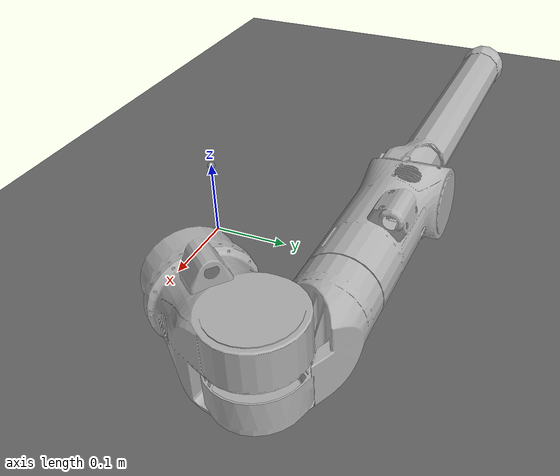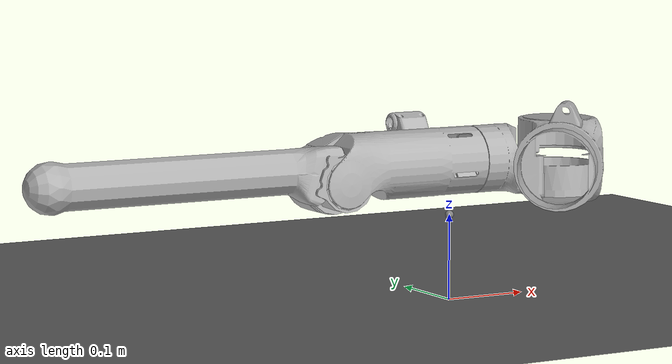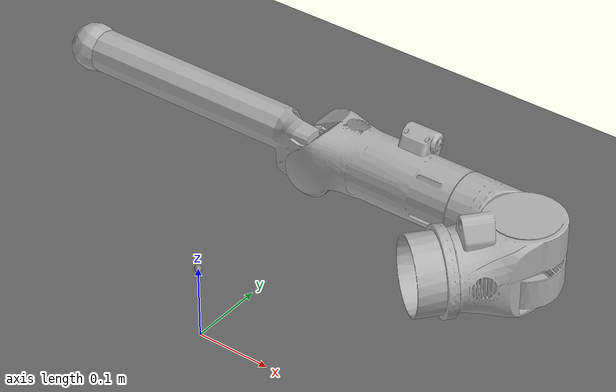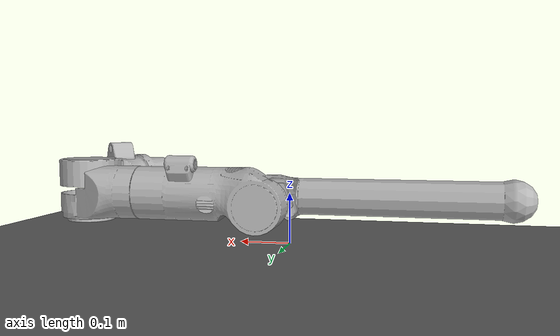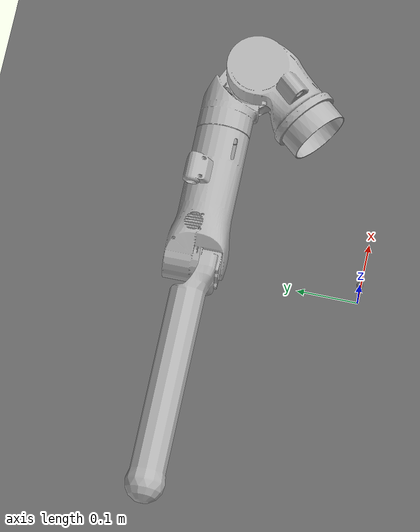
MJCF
<mujoco model="Alexander">
  <default>
    <joint limited="true" damping="0.01" armature="0.01" frictionloss="0.01" />
    <geom condim="4" contype="1" conaffinity="15" friction="0.9 0.2 0.2" solref="0.001 2" />
    <motor ctrllimited="true" />
    <equality solref="0.001 2" />
    <default class="visualgeom">
      <geom material="visualgeom" condim="1" contype="0" conaffinity="0" />
    </default>
  </default>

  <compiler angle="radian" meshdir="../meshes/" eulerseq="zyx" autolimits="true" />

  <asset>
    <texture name="texplane" type="2d" builtin="checker" rgb1=".0 .0 .0" rgb2=".8 .8 .8" width="100" height="100" />
    <material name="matplane" reflectance="0." texture="texplane" texrepeat="1 1" texuniform="true" />
    <material name="default_material" rgba="0.7 0.7 0.7 1" />
    <mesh name="LeftShoulderPitchLink.obj" file="cycloidal_arm/LeftShoulderPitchLink.obj" />
    <mesh name="LeftShoulderRollLink_shortBicep.obj" file="cycloidal_arm/LeftShoulderRollLink_shortBicep.obj" />
    <mesh name="LeftShoulderYawLink.obj" file="cycloidal_arm/LeftShoulderYawLink.obj" />
    <mesh name="LEFT_ELBOW_PITCH_LINK_413mm_LENGTH.obj" file="cycloidal_arm/LEFT_ELBOW_PITCH_LINK_413mm_LENGTH.obj" />
  </asset>

  <worldbody>
    <light directional="true" diffuse="0.4 0.4 0.4" specular="0.1 0.1 0.1" pos="0 0 5.0" dir="0 0 -1" castshadow="false" />
    <light directional="true" diffuse="0.6 0.6 0.6" specular="0.2 0.2 0.2" pos="0 0 4" dir="0 0 -1" />
    <geom name="ground" type="plane" pos="0 0 0" size="10 10 0.001" quat="1 0 0 0" material="matplane" condim="3" conaffinity="15" />
    <body name="root" pos="0 0 0.1" quat="1 0 1 0">
      <freejoint name="root" />
      <site name="root_site" pos="0 0 0" quat="1 0 0 0" />
      <body name="TORSO_LINK" pos="0 0 0" quat="1 0 0 0">
        <inertial pos="0 0 0" quat="1.0 0.0 0.0 0.0" mass="0.001" diaginertia="1e-05 1e-05 1e-05" />
        <body name="LEFT_SHOULDER_Y_LINK" pos="-0.025 0.1 0.214" quat="0.9396925696192966 0.34202028390474665 0.0 0.0">
          <joint name="LEFT_SHOULDER_Y" type="hinge" range="-3.141592 1.22173" axis="0.0 1.0 0.0" />
          <inertial pos="-0.00264 0.12135 -0.006824" quat="1.0 0.0 0.0 0.0" mass="2.99" diaginertia="0.0111046 0.0051699 0.01176" />
          <geom name="LEFT_SHOULDER_Y_LINK_visual_0" pos="0.0 0.0 0.0" quat="1.0 0.0 0.0 0.0" material="default_material" type="mesh" mesh="LeftShoulderPitchLink.obj" />
          <body name="LEFT_SHOULDER_X_LINK" pos="0.0 0.15676000 -0.01300000" quat="0.9396925696192966 -0.34202028390474665 0.0 0.0">
            <joint name="LEFT_SHOULDER_X" type="hinge" range="-0.349066 2.79253" axis="1 0 0" />
            <inertial pos="0.01251711 0.0188309 -0.03849849" quat="1.0 0.0 0.0 0.0" mass="0.972" diaginertia="0.0029485 0.0023587 0.0014366" />
            <geom name="LEFT_SHOULDER_X_LINK_visual_0" pos="0.0 0.0 0.0" quat="1.0 0.0 0.0 0.0" material="default_material" type="mesh" mesh="LeftShoulderRollLink_shortBicep.obj" />
            <body name="LEFT_SHOULDER_Z_LINK" pos="0.0 0.035 0.0" quat="1.0 0.0 0.0 0.0">
              <joint name="LEFT_SHOULDER_Z" type="hinge" range="-1.91986 1.22173" axis="0.0 0.0 1.0" />
              <inertial pos="0.00510403 0.00314332 -0.21695413" quat="1.0 0.0 0.0 0.0" mass="2.91" diaginertia="0.0267829 0.0265514 0.003052" />
              <geom name="LEFT_SHOULDER_Z_LINK_visual_0" pos="0.0 0.0 0.0867" quat="1.0 0.0 0.0 0.0" material="default_material" type="mesh" mesh="LeftShoulderYawLink.obj" />
              <body name="LEFT_ELBOW_PITCH_LINK" pos="0.015 0.0 -0.3127" quat="1.0 0.0 0.0 0.0">
                <joint name="LEFT_ELBOW_Y" type="hinge" range="-2.35619 0.174532925" axis="0.0 1.0 0.0" />
                <inertial pos="-0.01090935 -0.01147189 -0.10388715" quat="1.0 0.0 0.0 0.0" mass="0.616" diaginertia="0.00760733 0.00767556 0.0004554" />
                <geom name="LEFT_ELBOW_PITCH_LINK_visual_0" pos="0.0 0.0 0.0" quat="1.0 0.0 0.0 0.0" material="default_material" type="mesh" mesh="LEFT_ELBOW_PITCH_LINK_413mm_LENGTH.obj" />
              </body>
            </body>
          </body>
        </body>
      </body>
    </body>
  </worldbody>

  <actuator>
    <position name="LEFT_SHOULDER_Y_ctrl" joint="LEFT_SHOULDER_Y" kp="40.00000000" kv="2.00000000" forcerange="-150.00000000 150.00000000" forcelimited="true" ctrlrange="-3.141592 1.22173" ctrllimited="true" />
    <position name="LEFT_SHOULDER_X_ctrl" joint="LEFT_SHOULDER_X" kp="40.00000000" kv="2.00000000" forcerange="-150.00000000 150.00000000" forcelimited="true" ctrlrange="-0.349066 2.79253" ctrllimited="true" />
    <position name="LEFT_SHOULDER_Z_ctrl" joint="LEFT_SHOULDER_Z" kp="40.00000000" kv="2.00000000" forcerange="-80.00000000 80.00000000" forcelimited="true" ctrlrange="-1.91986 1.22173" ctrllimited="true" />
    <position name="LEFT_ELBOW_Y_ctrl" joint="LEFT_ELBOW_Y" kp="40.00000000" kv="2.00000000" forcerange="-80.00000000 80.00000000" forcelimited="true" ctrlrange="-2.35619 0.174532925" ctrllimited="true" />
  </actuator>

  <sensor>
    <framepos name="base_link_pos" objtype="site" objname="root_site" />
    <framequat name="base_link_quat" objtype="site" objname="root_site" />
    <framelinvel name="base_link_vel" objtype="site" objname="root_site" />
    <frameangvel name="base_link_ang_vel" objtype="site" objname="root_site" />
  </sensor>
</mujoco>
